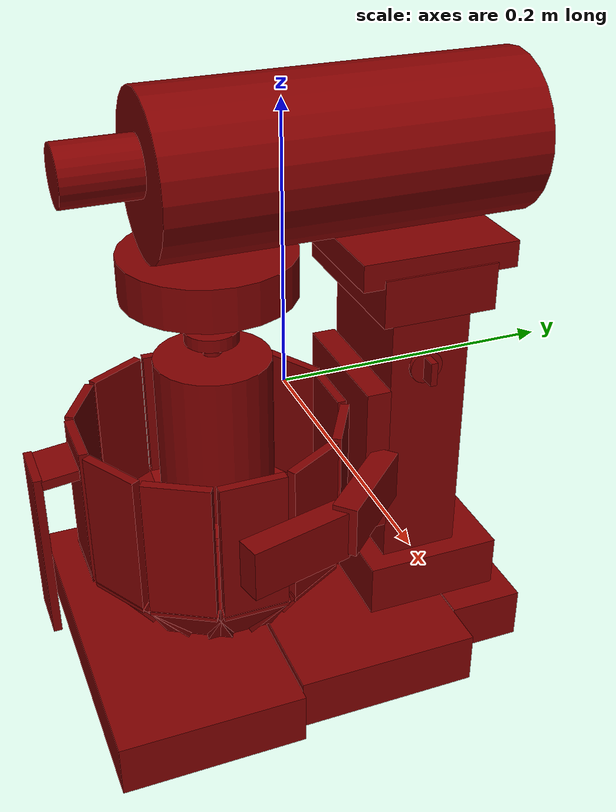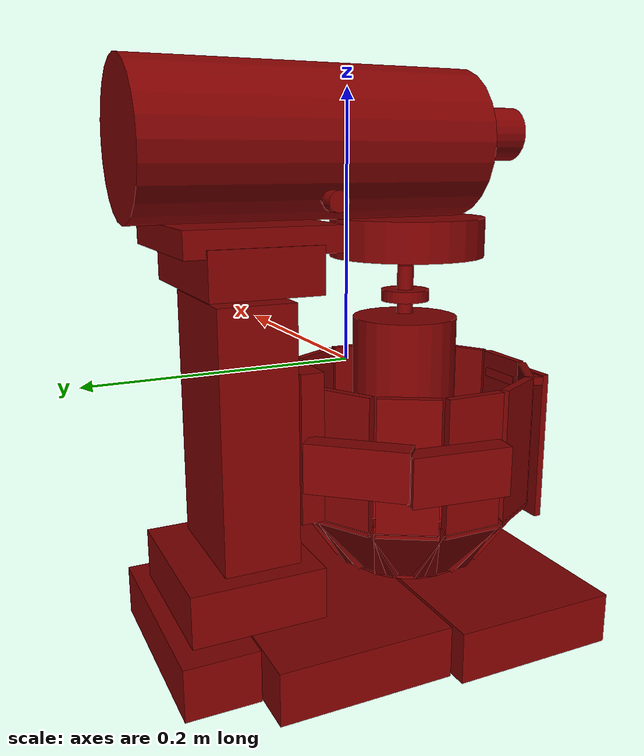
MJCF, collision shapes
<?xml version='1.0' encoding='UTF-8'?>
<mujoco model="model">
  <compiler angle="radian"/>
  <asset>
    <mesh file="visuals/Blender001.obj" name="Blender001_vis"/>
    <mesh file="visuals/Body001.obj" name="Body001_vis"/>
    <mesh file="visuals/Container001.obj" name="Container001_vis"/>
    <mesh file="visuals/Konb001.obj" name="Konb001_vis"/>
    <mesh file="visuals/Lever001.obj" name="Lever001_vis"/>
    <mesh file="visuals/Lid001.obj" name="Lid001_vis"/>
    <texture file="visuals/T_BC001.png" name="Body001_material" type="2d"/>
    <material name="Body001_material" rgba="1 1 1 1.0" texture="Body001_material" shininess="0.4472135901451111" specular="0.3103448502657381"/>
    <texture file="visuals/T_BC001.png" name="Container001_material" type="2d"/>
    <material name="Container001_material" rgba="1 1 1 1.0" texture="Container001_material" shininess="0.4472135901451111" specular="0.3103448502657381"/>
    <texture file="visuals/T_BC001.png" name="Konb001_material" type="2d"/>
    <material name="Konb001_material" rgba="1 1 1 1.0" texture="Konb001_material" shininess="0.4472135901451111" specular="0.3103448502657381"/>
    <texture file="visuals/T_BC001.png" name="Lid001_material" type="2d"/>
    <material name="Lid001_material" rgba="1 1 1 1.0" texture="Lid001_material" shininess="0.4472135901451111" specular="0.3103448502657381"/>
    <texture file="visuals/T_BC001.png" name="Blender001_material" type="2d"/>
    <material name="Blender001_material" rgba="1 1 1 1.0" texture="Blender001_material" shininess="0.4472135901451111" specular="0.3103448502657381"/>
    <texture file="visuals/T_BC001.png" name="Lever001_material" type="2d"/>
    <material name="Lever001_material" rgba="1 1 1 1.0" texture="Lever001_material" shininess="0.4472135901451111" specular="0.3103448502657381"/>
  </asset>
  <default>
    <default class="visual">
      <geom conaffinity="0" contype="0" group="1" type="mesh"/>
    </default>
    <default class="collision">
      <geom group="0" rgba="0.5 0 0 0.5"/>
    </default>
    <default class="spawn">
      <geom group="0" rgba="1 1 1 0.5" contype="0" conaffinity="0"/>
      <site group="0" rgba="1 1 1 0.5"/>
    </default>
    <default class="region">
      <geom group="1" conaffinity="0" contype="0" rgba="0 1 0 0"/>
    </default>
  </default>
  <worldbody>
    <body>
      <body name="object">
        <geom mesh="Body001_vis" type="mesh" solimp="0.998 0.998 0.001" solref="0.001 1" density="100" friction="0.95 0.3 0.1" class="visual" material="Body001_material"/>
        <geom class="collision" type="box" pos="0.000000 -0.097743 -0.197734" size="0.12444157898426056 0.06564506888389587 0.019715720787644386" quat="1.0 0.0 0.0 0.0"/>
        <geom class="collision" type="box" pos="0.000000 0.036928 -0.197734" size="0.11274799704551697 0.06673045456409454 0.019715720787644386" quat="1.0 0.0 0.0 0.0"/>
        <geom class="collision" type="box" pos="0.000000 0.132213 -0.197734" size="0.08129703253507614 0.027552330866456032 0.019715720787644386" quat="1.0 0.0 0.0 0.0"/>
        <geom class="collision" type="box" pos="0.000000 0.096267 -0.158167" size="0.0607515387237072 0.0507378876209259 0.019715720787644386" quat="1.0 0.0 0.0 0.0"/>
        <geom class="collision" type="box" pos="0.000000 0.088767 -0.041019" size="0.047403931617736816 0.02875344827771187 0.09607492387294769" quat="1.0 0.0 0.0 0.0"/>
        <geom class="collision" type="box" pos="0.000000 0.050666 -0.050846" size="0.05001681298017502 0.008843391202390194 0.05589192733168602" quat="1.0 0.0 0.0 0.0"/>
        <geom class="collision" type="box" pos="-0.078875 0.029331 -0.059263" size="0.037609051913022995 0.008843464776873589 0.018383823335170746" quat="0.9097738265991211 0.0 0.0 0.41510432958602905"/>
        <geom class="collision" type="box" pos="-0.107106 -0.033380 -0.062894" size="0.037609051913022995 0.008843463845551014 0.018383823335170746" quat="0.7446263432502747 0.0 0.0 0.667481541633606"/>
        <geom class="collision" type="box" pos="0.077551 0.029825 -0.059263" size="0.037609051913022995 0.008843464776873589 0.018383823335170746" quat="0.3897849917411804 0.0 0.0 0.9209058880805969"/>
        <geom class="collision" type="box" pos="0.106144 -0.032146 -0.062894" size="0.037609051913022995 0.008843464776873589 0.018383823335170746" quat="0.6137421727180481 0.0 0.0 0.7895064949989319"/>
        <body name="Container001">
          <joint axis="0.0 0.0 1.0" pos="-0.000064 -0.070266 -0.093821" limited="true" name="Container001_joint" range="0.0 0.03" type="slide" damping="1" frictionloss="1" armature=".01" stiffness="0.05"/>
          <geom mesh="Container001_vis" type="mesh" solimp="0.998 0.998 0.001" solref="0.001 1" density="100" friction="0.95 0.3 0.1" class="visual" material="Container001_material"/>
          <geom class="collision" type="cylinder" pos="-0.000064 -0.055991 -0.170849" size="0.048372913151979446 0.002831135643646121" quat="1.0 0.0 0.0 0.0"/>
          <geom class="collision" type="box" pos="0.000005 0.034856 -0.065161" size="0.022890442982316017 0.0032223693560808897 0.052586209028959274" quat="1.0 0.0 0.0 0.0"/>
          <geom class="collision" type="box" pos="0.000008 0.017561 -0.138841" size="0.023930231109261513 0.0030119305010885 0.03303047642111778" quat="0.9473550915718079 -0.3201848864555359 7.109532661598547e-17 -3.926967335560564e-24"/>
          <geom class="collision" type="box" pos="0.046199 0.024001 -0.065161" size="0.022890442982316017 0.003222322789952159 0.05258544534444809" quat="0.9659258127212524 0.0 -0.0 -0.2588191032409668"/>
          <geom class="collision" type="box" pos="0.036774 0.007671 -0.138841" size="0.023930231109261513 0.0030119302682578564 0.03303048014640808" quat="0.9150747060775757 -0.3092748820781708 0.08286997675895691 -0.24519360065460205"/>
          <geom class="collision" type="box" pos="0.079996 -0.009848 -0.065161" size="0.022890442982316017 0.003222322789952159 0.05258544534444809" quat="0.8660253882408142 0.0 -0.0 -0.5"/>
          <geom class="collision" type="box" pos="0.063670 -0.019277 -0.138841" size="0.023930231109261513 0.0030119309667497873 0.03303048387169838" quat="0.820433497428894 -0.2772882580757141 0.16009250283241272 -0.4736776351928711"/>
          <geom class="collision" type="box" pos="0.092342 -0.056060 -0.065161" size="0.0032223265152424574 0.022890761494636536 0.05258609727025032" quat="1.0 0.0 0.0 0.0"/>
          <geom class="collision" type="box" pos="0.073488 -0.056063 -0.138841" size="0.023930231109261513 0.0030119300354272127 0.033030468970537186" quat="0.6698811650276184 -0.22640492022037506 0.22640492022037506 -0.6698812246322632"/>
          <geom class="collision" type="box" pos="0.079927 -0.102254 -0.065161" size="0.022890441119670868 0.003222322789952159 0.05258544534444809" quat="0.4999999701976776 0.0 -0.0 -0.866025447845459"/>
          <geom class="collision" type="box" pos="0.063598 -0.092829 -0.138841" size="0.023930231109261513 0.0030119307339191437 0.033030468970537186" quat="0.4736774265766144 -0.16009239852428436 0.2772882878780365 -0.8204336166381836"/>
          <geom class="collision" type="box" pos="0.046079 -0.136051 -0.065161" size="0.022890441119670868 0.003222322789952159 0.05258544534444809" quat="0.2588190734386444 0.0 -0.0 -0.9659258127212524"/>
          <geom class="collision" type="box" pos="0.036649 -0.119725 -0.138841" size="0.023930232971906662 0.0030119300354272127 0.033030468970537186" quat="0.24519355595111847 -0.08286994695663452 0.309274822473526 -0.9150747656822205"/>
          <geom class="collision" type="box" pos="-0.000134 -0.148397 -0.065161" size="0.022890442982316017 0.0032223649322986603 0.05258599668741226" quat="1.0 0.0 0.0 0.0"/>
          <geom class="collision" type="box" pos="-0.000137 -0.129543 -0.138841" size="0.023930231109261513 0.0030119307339191437 0.033030468970537186" quat="1.8445685157075786e-07 -6.234228777657336e-08 -0.3201848566532135 0.9473550915718079"/>
          <geom class="collision" type="box" pos="-0.046327 -0.135982 -0.065161" size="0.022890442982316017 0.003222322789952159 0.05258544534444809" quat="0.25881919264793396 0.0 0.0 0.9659258127212524"/>
          <geom class="collision" type="box" pos="-0.036903 -0.119653 -0.138841" size="0.023930231109261513 0.0030119307339191437 0.033030468970537186" quat="0.24519367516040802 -0.0828699842095375 -0.3092748522758484 0.9150747060775757"/>
          <geom class="collision" type="box" pos="-0.080125 -0.102134 -0.065161" size="0.022890441119670868 0.0032223230227828026 0.05258544534444809" quat="0.5000000596046448 0.0 0.0 0.8660253882408142"/>
          <geom class="collision" type="box" pos="-0.063799 -0.092704 -0.138841" size="0.023930231109261513 0.0030119305010885 0.033030468970537186" quat="0.4736776053905487 -0.16009245812892914 -0.27728819847106934 0.8204335570335388"/>
          <geom class="collision" type="box" pos="-0.092471 -0.055921 -0.065161" size="0.0032223265152424574 0.02289065718650818 0.05258588492870331" quat="1.0 0.0 0.0 0.0"/>
          <geom class="collision" type="box" pos="-0.073616 -0.055918 -0.138841" size="0.023930231109261513 0.0030119305010885 0.03303047642111778" quat="0.6698812246322632 -0.22640486061573029 -0.22640486061573029 0.6698812246322632"/>
          <geom class="collision" type="box" pos="-0.080056 -0.009728 -0.065161" size="0.022890442982316017 0.003222322789952159 0.05258544534444809" quat="0.8660256266593933 0.0 0.0 0.49999961256980896"/>
          <geom class="collision" type="box" pos="-0.063726 -0.019152 -0.138841" size="0.023930231109261513 0.0030119305010885 0.03303047642111778" quat="0.8204337954521179 -0.2772882580757141 -0.160092294216156 0.4736771583557129"/>
          <geom class="collision" type="box" pos="-0.046207 0.024070 -0.065161" size="0.022890442982316017 0.003222322789952159 0.05258544534444809" quat="0.9659258723258972 0.0 0.0 0.25881892442703247"/>
          <geom class="collision" type="box" pos="-0.036778 0.007744 -0.138841" size="0.023930232971906662 0.0030119300354272127 0.03303048014640808" quat="0.9150746464729309 -0.3092750012874603 -0.0828700140118599 0.24519355595111847"/>
          <geom class="collision" type="box" pos="-0.000121 -0.179301 -0.092818" size="0.018832150846719742 0.0029947066213935614 0.06414511799812317" quat="1.0 0.0 0.0 0.0"/>
          <geom class="collision" type="box" pos="-0.000121 -0.160689 -0.031692" size="0.018832193687558174 0.003601614385843277 0.01608855649828911" quat="1.0881876733037643e-07 1.7037454824730958e-07 -0.7451668381690979 0.6668781042098999"/>
        </body>
        <body name="Konb001">
          <joint axis="-1.0 0.0 0.0" pos="0.053533 0.084213 0.020178" limited="true" name="Konb001_joint" range="0.0 3.6651914291880923" type="hinge" damping="1" frictionloss="1" armature=".01" stiffness="0.05"/>
          <geom mesh="Konb001_vis" type="mesh" solimp="0.998 0.998 0.001" solref="0.001 1" density="100" friction="0.95 0.3 0.1" class="visual" material="Konb001_material"/>
          <geom class="collision" type="cylinder" pos="0.050497 0.084138 0.020178" size="0.011789093725383282 0.0017230635276064277" quat="0.7071068286895752 -4.750302551315144e-08 0.7071067094802856 4.7503014855010406e-08"/>
          <geom class="collision" type="box" pos="0.057810 0.084258 0.020165" size="0.0056040058843791485 0.0023768404498696327 0.008633320219814777" quat="1.0 0.0 0.0 0.0"/>
        </body>
        <body name="Lid001">
          <joint axis="-1.0 0.0 0.0" pos="-0.000111 0.127391 0.059922" limited="true" name="Lid001_joint" range="0.0 1.5707963267948966" type="hinge" damping="1" frictionloss="1" armature=".01" stiffness="0.05"/>
          <geom mesh="Lid001_vis" type="mesh" solimp="0.998 0.998 0.001" solref="0.001 1" density="100" friction="0.95 0.3 0.1" class="visual" material="Lid001_material"/>
          <geom class="collision" type="box" pos="0.000000 0.086666 0.077928" size="0.06253496557474136 0.0404474101960659 0.01676778867840767" quat="1.0 0.0 0.0 0.0"/>
          <geom class="collision" type="cylinder" pos="-0.000000 -0.051545 0.091789" size="0.05965748801827431 0.014811050146818161" quat="1.0 0.0 0.0 0.0"/>
          <geom class="collision" type="cylinder" pos="0.000000 0.036239 0.161055" size="0.05463188886642456 0.12900060415267944" quat="0.7071068286895752 -0.7071067690849304 -1.5700924318127872e-16 5.9269340452702814e-24"/>
          <geom class="collision" type="box" pos="0.000000 0.086666 0.098075" size="0.0610172301530838 0.05543158948421478 0.009290141053497791" quat="1.0 0.0 0.0 0.0"/>
          <geom class="collision" type="cylinder" pos="0.000000 -0.114842 0.168165" size="0.020197732374072075 0.02965622767806053" quat="0.7071068286895752 -0.7071067690849304 -1.5700924318127872e-16 5.9269340452702814e-24"/>
          <body name="Blender001">
            <joint axis="0.0 0.0 1.0" pos="0.000212 -0.051266 -0.026484" limited="false" name="Blender001_joint" range="0 360" type="hinge" damping="1" frictionloss="1" armature=".01" stiffness="0.05"/>
            <geom mesh="Blender001_vis" type="mesh" solimp="0.998 0.998 0.001" solref="0.001 1" density="100" friction="0.95 0.3 0.1" class="visual" material="Blender001_material"/>
            <geom class="collision" type="cylinder" pos="0.000212 -0.051266 -0.025222" size="0.04076942801475525 0.05489890277385712" quat="1.0 0.0 0.0 0.0"/>
            <geom class="collision" type="cylinder" pos="0.000212 -0.051266 0.050808" size="0.006365129258483648 0.018637439236044884" quat="1.0 0.0 0.0 0.0"/>
            <geom class="collision" type="cylinder" pos="0.000212 -0.051266 0.046341" size="0.01876448094844818 0.004426607862114906" quat="1.0 0.0 0.0 0.0"/>
          </body>
          <body name="Lever001">
            <joint axis="0.0 -1.0 0.0" pos="-0.064712 0.044815 0.123445" limited="true" name="Lever001_joint" range="0.0 0.03" type="slide" damping="1" frictionloss="1" armature=".01" stiffness="0"/>
            <geom mesh="Lever001_vis" type="mesh" solimp="0.998 0.998 0.001" solref="0.001 1" density="100" friction="0.95 0.3 0.1" class="visual" material="Lever001_material"/>
            <geom class="collision" type="cylinder" pos="-0.065487 0.044936 0.123445" size="0.0033847347367554903 0.00599570432677865" quat="0.7071068286895752 -4.750302551315144e-08 0.7071067094802856 4.7503014855010406e-08"/>
            <geom class="collision" type="cylinder" pos="-0.075054 0.044936 0.123445" size="0.0070022353902459145 0.0053014084696769714" quat="0.7071068286895752 -4.750302551315144e-08 0.7071067094802856 4.7503014855010406e-08"/>
          </body>
        </body>
        <geom class="region" name="reg_main" type="box" pos="0.0 0.008716500000000002 0.0" size="0.125217 0.1727535 0.217265"/>
      </body>
    </body>
  </worldbody>
  <actuator>
    <motor name="Container001_joint_actuator" joint="Container001_joint" gear="50"/>
    <motor name="Konb001_joint_actuator" joint="Konb001_joint" gear="10"/>
    <motor name="Lid001_joint_actuator" joint="Lid001_joint" gear="10"/>
    <motor name="Blender001_joint_actuator" joint="Blender001_joint" gear="10"/>
    <motor name="Lever001_joint_actuator" joint="Lever001_joint" gear="1"/>
  </actuator>
</mujoco>
